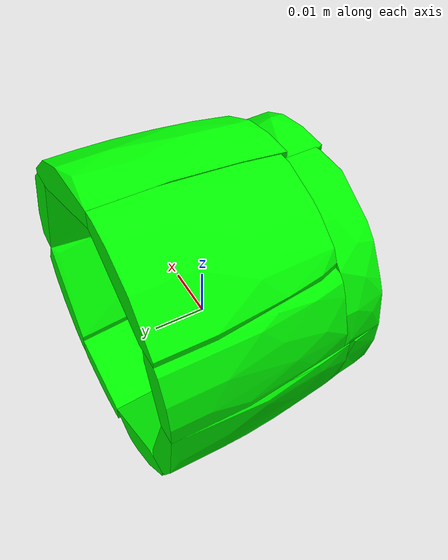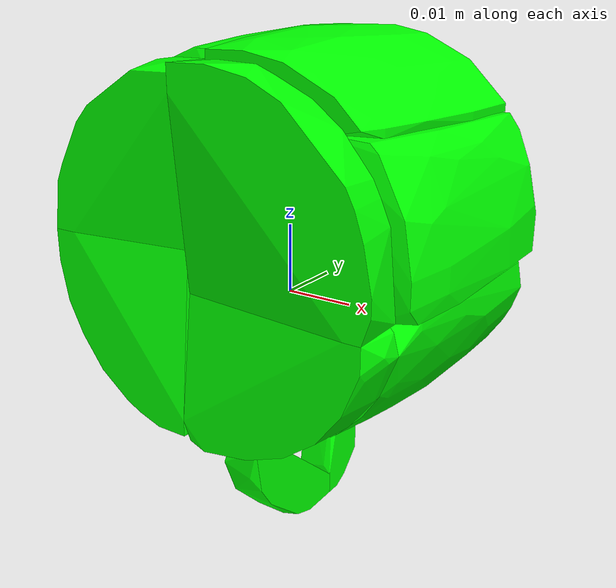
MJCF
<mujoco model="shapenet9-11">
  <asset>
    <mesh file="meshes/shapenet9-11/shapenet9-11_0.stl" name="shapenet9-11_0" scale="0.1 0.1 0.1"/>
    <mesh file="meshes/shapenet9-11/shapenet9-11_1.stl" name="shapenet9-11_1" scale="0.1 0.1 0.1"/>
    <mesh file="meshes/shapenet9-11/shapenet9-11_2.stl" name="shapenet9-11_2" scale="0.1 0.1 0.1"/>
    <mesh file="meshes/shapenet9-11/shapenet9-11_3.stl" name="shapenet9-11_3" scale="0.1 0.1 0.1"/>
    <mesh file="meshes/shapenet9-11/shapenet9-11_4.stl" name="shapenet9-11_4" scale="0.1 0.1 0.1"/>
    <mesh file="meshes/shapenet9-11/shapenet9-11_5.stl" name="shapenet9-11_5" scale="0.1 0.1 0.1"/>
    <mesh file="meshes/shapenet9-11/shapenet9-11_6.stl" name="shapenet9-11_6" scale="0.1 0.1 0.1"/>
    <mesh file="meshes/shapenet9-11/shapenet9-11_7.stl" name="shapenet9-11_7" scale="0.1 0.1 0.1"/>
    <mesh file="meshes/shapenet9-11/shapenet9-11_8.stl" name="shapenet9-11_8" scale="0.1 0.1 0.1"/>
    <mesh file="meshes/shapenet9-11/shapenet9-11_9.stl" name="shapenet9-11_9" scale="0.1 0.1 0.1"/>
    <mesh file="meshes/shapenet9-11/shapenet9-11_10.stl" name="shapenet9-11_10" scale="0.1 0.1 0.1"/>
    <mesh file="meshes/shapenet9-11/shapenet9-11_11.stl" name="shapenet9-11_11" scale="0.1 0.1 0.1"/>
    <mesh file="meshes/shapenet9-11/shapenet9-11_12.stl" name="shapenet9-11_12" scale="0.1 0.1 0.1"/>
    <mesh file="meshes/shapenet9-11/shapenet9-11_13.stl" name="shapenet9-11_13" scale="0.1 0.1 0.1"/>
  </asset>
  <worldbody>
    <body>
      <body name="collision">
        <geom pos="0 0 0" mesh="shapenet9-11_0" type="mesh" solimp="0.998 0.998 0.001" solref="0.001 1" density="100" friction="0.95 0.3 0.1" rgba="0 1 0 1" group="1" condim="4"/>
        <geom pos="0 0 0" mesh="shapenet9-11_1" type="mesh" solimp="0.998 0.998 0.001" solref="0.001 1" density="100" friction="0.95 0.3 0.1" rgba="0 1 0 1" group="1" condim="4"/>
        <geom pos="0 0 0" mesh="shapenet9-11_2" type="mesh" solimp="0.998 0.998 0.001" solref="0.001 1" density="100" friction="0.95 0.3 0.1" rgba="0 1 0 1" group="1" condim="4"/>
        <geom pos="0 0 0" mesh="shapenet9-11_3" type="mesh" solimp="0.998 0.998 0.001" solref="0.001 1" density="100" friction="0.95 0.3 0.1" rgba="0 1 0 1" group="1" condim="4"/>
        <geom pos="0 0 0" mesh="shapenet9-11_4" type="mesh" solimp="0.998 0.998 0.001" solref="0.001 1" density="100" friction="0.95 0.3 0.1" rgba="0 1 0 1" group="1" condim="4"/>
        <geom pos="0 0 0" mesh="shapenet9-11_5" type="mesh" solimp="0.998 0.998 0.001" solref="0.001 1" density="100" friction="0.95 0.3 0.1" rgba="0 1 0 1" group="1" condim="4"/>
        <geom pos="0 0 0" mesh="shapenet9-11_6" type="mesh" solimp="0.998 0.998 0.001" solref="0.001 1" density="100" friction="0.95 0.3 0.1" rgba="0 1 0 1" group="1" condim="4"/>
        <geom pos="0 0 0" mesh="shapenet9-11_7" type="mesh" solimp="0.998 0.998 0.001" solref="0.001 1" density="100" friction="0.95 0.3 0.1" rgba="0 1 0 1" group="1" condim="4"/>
        <geom pos="0 0 0" mesh="shapenet9-11_8" type="mesh" solimp="0.998 0.998 0.001" solref="0.001 1" density="100" friction="0.95 0.3 0.1" rgba="0 1 0 1" group="1" condim="4"/>
        <geom pos="0 0 0" mesh="shapenet9-11_9" type="mesh" solimp="0.998 0.998 0.001" solref="0.001 1" density="100" friction="0.95 0.3 0.1" rgba="0 1 0 1" group="1" condim="4"/>
        <geom pos="0 0 0" mesh="shapenet9-11_10" type="mesh" solimp="0.998 0.998 0.001" solref="0.001 1" density="100" friction="0.95 0.3 0.1" rgba="0 1 0 1" group="1" condim="4"/>
        <geom pos="0 0 0" mesh="shapenet9-11_11" type="mesh" solimp="0.998 0.998 0.001" solref="0.001 1" density="100" friction="0.95 0.3 0.1" rgba="0 1 0 1" group="1" condim="4"/>
        <geom pos="0 0 0" mesh="shapenet9-11_12" type="mesh" solimp="0.998 0.998 0.001" solref="0.001 1" density="100" friction="0.95 0.3 0.1" rgba="0 1 0 1" group="1" condim="4"/>
        <geom pos="0 0 0" mesh="shapenet9-11_13" type="mesh" solimp="0.998 0.998 0.001" solref="0.001 1" density="100" friction="0.95 0.3 0.1" rgba="0 1 0 1" group="1" condim="4"/>
      </body>
      <body name="visual">
        <geom pos="0 0 0" mesh="shapenet9-11_0" type="mesh" rgba="0 1 0 1" conaffinity="0" contype="0" group="0" mass="0.0001"/>
        <geom pos="0 0 0" mesh="shapenet9-11_1" type="mesh" rgba="0 1 0 1" conaffinity="0" contype="0" group="0" mass="0.0001"/>
        <geom pos="0 0 0" mesh="shapenet9-11_2" type="mesh" rgba="0 1 0 1" conaffinity="0" contype="0" group="0" mass="0.0001"/>
        <geom pos="0 0 0" mesh="shapenet9-11_3" type="mesh" rgba="0 1 0 1" conaffinity="0" contype="0" group="0" mass="0.0001"/>
        <geom pos="0 0 0" mesh="shapenet9-11_4" type="mesh" rgba="0 1 0 1" conaffinity="0" contype="0" group="0" mass="0.0001"/>
        <geom pos="0 0 0" mesh="shapenet9-11_5" type="mesh" rgba="0 1 0 1" conaffinity="0" contype="0" group="0" mass="0.0001"/>
        <geom pos="0 0 0" mesh="shapenet9-11_6" type="mesh" rgba="0 1 0 1" conaffinity="0" contype="0" group="0" mass="0.0001"/>
        <geom pos="0 0 0" mesh="shapenet9-11_7" type="mesh" rgba="0 1 0 1" conaffinity="0" contype="0" group="0" mass="0.0001"/>
        <geom pos="0 0 0" mesh="shapenet9-11_8" type="mesh" rgba="0 1 0 1" conaffinity="0" contype="0" group="0" mass="0.0001"/>
        <geom pos="0 0 0" mesh="shapenet9-11_9" type="mesh" rgba="0 1 0 1" conaffinity="0" contype="0" group="0" mass="0.0001"/>
        <geom pos="0 0 0" mesh="shapenet9-11_10" type="mesh" rgba="0 1 0 1" conaffinity="0" contype="0" group="0" mass="0.0001"/>
        <geom pos="0 0 0" mesh="shapenet9-11_11" type="mesh" rgba="0 1 0 1" conaffinity="0" contype="0" group="0" mass="0.0001"/>
        <geom pos="0 0 0" mesh="shapenet9-11_12" type="mesh" rgba="0 1 0 1" conaffinity="0" contype="0" group="0" mass="0.0001"/>
        <geom pos="0 0 0" mesh="shapenet9-11_13" type="mesh" rgba="0 1 0 1" conaffinity="0" contype="0" group="0" mass="0.0001"/>
      </body>
      <site rgba="0 0 0 0" size="0.005" pos="0 0 -0.06" name="bottom_site"/>
      <site rgba="0 0 0 0" size="0.005" pos="0 0 0.04" name="top_site"/>
      <site rgba="0 0 0 0" size="0.005" pos="0.025 0.025 0" name="horizontal_radius_site"/>
    </body>
  </worldbody>
</mujoco>
